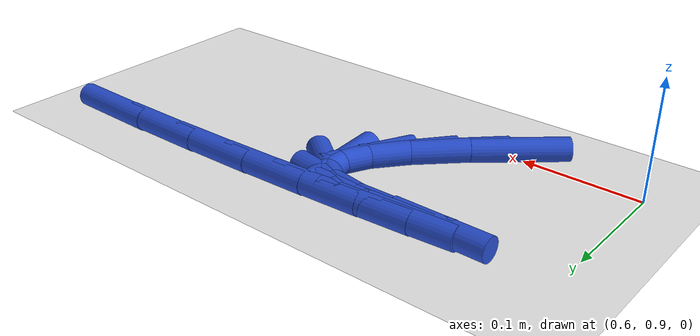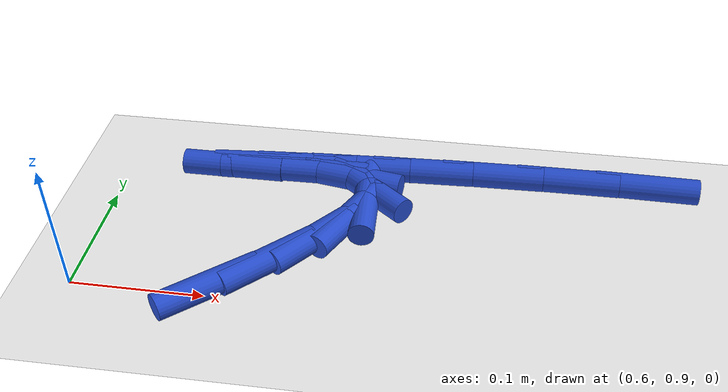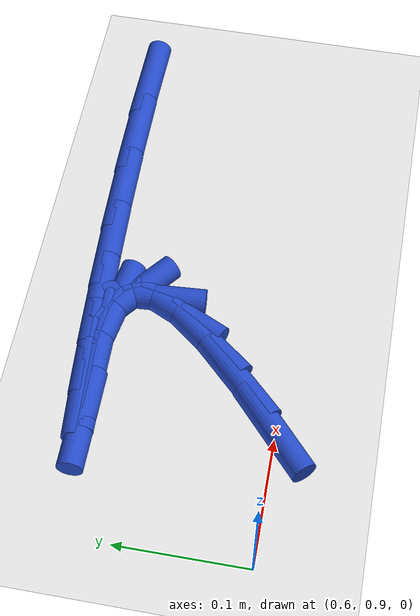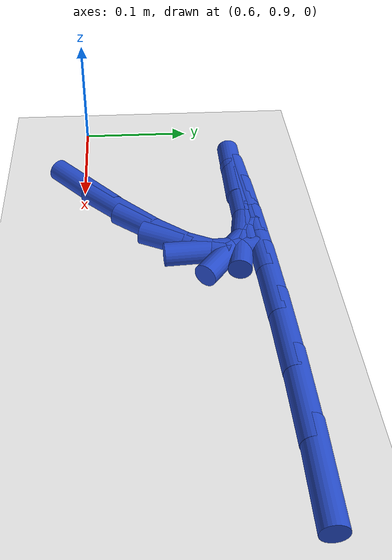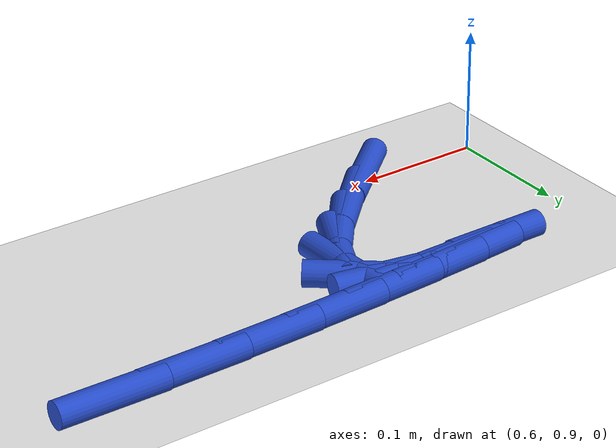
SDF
<sdf version="1.6">
 <world name="default">
  <model name="ground_plane">
   <static>1</static>
   <link name="link">
    <collision name="collision">
     <geometry><plane><normal>0 0 1</normal><size>100 100</size></plane></geometry>
     <surface><friction><ode><mu>100</mu><mu2>50</mu2></ode></friction></surface>
    </collision>
    <visual name="visual">
     <cast_shadows>0</cast_shadows>
     <geometry><plane><normal>0 0 1</normal><size>100 100</size></plane></geometry>
     <material>
      <script><uri>file://media/materials/scripts/gazebo.material</uri><name>Gazebo/WhiteGlow</name></script>
     </material>
    </visual>
   </link>
  </model>
  <model name="line">
   <link name="link_28">
    <pose>0.7032504309300246 0.9013140658442317 0.01 0 1.57 0.7214390616236003</pose>
    <collision name="collision">
     <geometry><cylinder><radius>0.01</radius><length>0.08</length></cylinder></geometry>
    </collision>
    <visual name="visual">
     <material>
      <script><name>Gazebo/Blue</name><uri>file://media/materials/scripts/gazebo.material</uri></script>
     </material>
     <geometry><cylinder><radius>0.01</radius><length>0.08</length></cylinder></geometry>
    </visual>
   </link>
   <link name="link_29">
    <pose>0.7391868278198812 0.9329243378014703 0.01 0 1.57 0.7852481949866682</pose>
    <collision name="collision">
     <geometry><cylinder><radius>0.01</radius><length>0.08</length></cylinder></geometry>
    </collision>
    <visual name="visual">
     <material>
      <script><name>Gazebo/Blue</name><uri>file://media/materials/scripts/gazebo.material</uri></script>
     </material>
     <geometry><cylinder><radius>0.01</radius><length>0.08</length></cylinder></geometry>
    </visual>
   </link>
   <link name="link_30">
    <pose>0.7680372599301752 0.9617661179023198 0.01 0 1.57 0.8961079967658859</pose>
    <collision name="collision">
     <geometry><cylinder><radius>0.01</radius><length>0.08</length></cylinder></geometry>
    </collision>
    <visual name="visual">
     <material>
      <script><name>Gazebo/Blue</name><uri>file://media/materials/scripts/gazebo.material</uri></script>
     </material>
     <geometry><cylinder><radius>0.01</radius><length>0.08</length></cylinder></geometry>
    </visual>
   </link>
   <link name="link_31">
    <pose>0.7883566267550107 0.9871680660451438 0.01 0 1.57 1.118567717611893</pose>
    <collision name="collision">
     <geometry><cylinder><radius>0.01</radius><length>0.08</length></cylinder></geometry>
    </collision>
    <visual name="visual">
     <material>
      <script><name>Gazebo/Blue</name><uri>file://media/materials/scripts/gazebo.material</uri></script>
     </material>
     <geometry><cylinder><radius>0.01</radius><length>0.08</length></cylinder></geometry>
    </visual>
   </link>
   <link name="link_32">
    <pose>0.7986998277884919 1.0084588421283063 0.01 0 1.57 -1.5055843432101452</pose>
    <collision name="collision">
     <geometry><cylinder><radius>0.01</radius><length>0.08</length></cylinder></geometry>
    </collision>
    <visual name="visual">
     <material>
      <script><name>Gazebo/Blue</name><uri>file://media/materials/scripts/gazebo.material</uri></script>
     </material>
     <geometry><cylinder><radius>0.01</radius><length>0.08</length></cylinder></geometry>
    </visual>
   </link>
   <link name="link_33">
    <pose>0.7976217625247232 1.0249671060501713 0.01 0 1.57 -0.6703029265155137</pose>
    <collision name="collision">
     <geometry><cylinder><radius>0.01</radius><length>0.08</length></cylinder></geometry>
    </collision>
    <visual name="visual">
     <material>
      <script><name>Gazebo/Blue</name><uri>file://media/materials/scripts/gazebo.material</uri></script>
     </material>
     <geometry><cylinder><radius>0.01</radius><length>0.08</length></cylinder></geometry>
    </visual>
   </link>
   <link name="link_34">
    <pose>0.7836773304578089 1.036021517709103 0.01 0 1.57 -0.1727272816999848</pose>
    <collision name="collision">
     <geometry><cylinder><radius>0.01</radius><length>0.08</length></cylinder></geometry>
    </collision>
    <visual name="visual">
     <material>
      <script><name>Gazebo/Blue</name><uri>file://media/materials/scripts/gazebo.material</uri></script>
     </material>
     <geometry><cylinder><radius>0.01</radius><length>0.08</length></cylinder></geometry>
    </visual>
   </link>
   <link name="link_35">
    <pose>0.7554225045401322 1.0409510181812782 0.01 0 1.57 0.013539274539179837</pose>
    <collision name="collision">
     <geometry><cylinder><radius>0.01</radius><length>0.08</length></cylinder></geometry>
    </collision>
    <visual name="visual">
     <material>
      <script><name>Gazebo/Blue</name><uri>file://media/materials/scripts/gazebo.material</uri></script>
     </material>
     <geometry><cylinder><radius>0.01</radius><length>0.08</length></cylinder></geometry>
    </visual>
   </link>
   <link name="link_36">
    <pose>0.7165283898204996 1.040424387904529 0.01 0 1.57 0.04062246191361496</pose>
    <collision name="collision">
     <geometry><cylinder><radius>0.01</radius><length>0.08</length></cylinder></geometry>
    </collision>
    <visual name="visual">
     <material>
      <script><name>Gazebo/Blue</name><uri>file://media/materials/scripts/gazebo.material</uri></script>
     </material>
     <geometry><cylinder><radius>0.01</radius><length>0.08</length></cylinder></geometry>
    </visual>
   </link>
   <link name="link_37">
    <pose>0.6861410985516151 1.0391893018743115 0.01 0 1.57 -0.0012549470230298768</pose>
    <collision name="collision">
     <geometry><cylinder><radius>0.01</radius><length>0.08</length></cylinder></geometry>
    </collision>
    <visual name="visual">
     <material>
      <script><name>Gazebo/Blue</name><uri>file://media/materials/scripts/gazebo.material</uri></script>
     </material>
     <geometry><cylinder><radius>0.01</radius><length>0.08</length></cylinder></geometry>
    </visual>
   </link>
   <link name="link_41">
    <pose>0.710027162458029 1.0444348749916466 0.01 0 1.57 0.07551353488330204</pose>
    <collision name="collision">
     <geometry><cylinder><radius>0.01</radius><length>0.08</length></cylinder></geometry>
    </collision>
    <visual name="visual">
     <material>
      <script><name>Gazebo/Blue</name><uri>file://media/materials/scripts/gazebo.material</uri></script>
     </material>
     <geometry><cylinder><radius>0.01</radius><length>0.08</length></cylinder></geometry>
    </visual>
   </link>
   <link name="link_42">
    <pose>0.7447725630418902 1.0470636215396982 0.01 0 1.57 0.061364786768981265</pose>
    <collision name="collision">
     <geometry><cylinder><radius>0.01</radius><length>0.08</length></cylinder></geometry>
    </collision>
    <visual name="visual">
     <material>
      <script><name>Gazebo/Blue</name><uri>file://media/materials/scripts/gazebo.material</uri></script>
     </material>
     <geometry><cylinder><radius>0.01</radius><length>0.08</length></cylinder></geometry>
    </visual>
   </link>
   <link name="link_43">
    <pose>0.7879473769830165 1.0497163653840356 0.01 0 1.57 0.048405381832603116</pose>
    <collision name="collision">
     <geometry><cylinder><radius>0.01</radius><length>0.08</length></cylinder></geometry>
    </collision>
    <visual name="visual">
     <material>
      <script><name>Gazebo/Blue</name><uri>file://media/materials/scripts/gazebo.material</uri></script>
     </material>
     <geometry><cylinder><radius>0.01</radius><length>0.08</length></cylinder></geometry>
    </visual>
   </link>
   <link name="link_44">
    <pose>0.8380115340385887 1.0521416345190573 0.01 0 1.57 0.035109226056950896</pose>
    <collision name="collision">
     <geometry><cylinder><radius>0.01</radius><length>0.08</length></cylinder></geometry>
    </collision>
    <visual name="visual">
     <material>
      <script><name>Gazebo/Blue</name><uri>file://media/materials/scripts/gazebo.material</uri></script>
     </material>
     <geometry><cylinder><radius>0.01</radius><length>0.08</length></cylinder></geometry>
    </visual>
   </link>
   <link name="link_45">
    <pose>0.8934249639657881 1.054087956939163 0.01 0 1.57 0.020528180627371145</pose>
    <collision name="collision">
     <geometry><cylinder><radius>0.01</radius><length>0.08</length></cylinder></geometry>
    </collision>
    <visual name="visual">
     <material>
      <script><name>Gazebo/Blue</name><uri>file://media/materials/scripts/gazebo.material</uri></script>
     </material>
     <geometry><cylinder><radius>0.01</radius><length>0.08</length></cylinder></geometry>
    </visual>
   </link>
   <link name="link_46">
    <pose>0.9526475965217949 1.0553038606387521 0.01 0 1.57 0.0038055802105734274</pose>
    <collision name="collision">
     <geometry><cylinder><radius>0.01</radius><length>0.08</length></cylinder></geometry>
    </collision>
    <visual name="visual">
     <material>
      <script><name>Gazebo/Blue</name><uri>file://media/materials/scripts/gazebo.material</uri></script>
     </material>
     <geometry><cylinder><radius>0.01</radius><length>0.08</length></cylinder></geometry>
    </visual>
   </link>
   <link name="link_47">
    <pose>1.0141393614637901 1.0555378736122227 0.01 0 1.57 -0.01605995749989276</pose>
    <collision name="collision">
     <geometry><cylinder><radius>0.01</radius><length>0.08</length></cylinder></geometry>
    </collision>
    <visual name="visual">
     <material>
      <script><name>Gazebo/Blue</name><uri>file://media/materials/scripts/gazebo.material</uri></script>
     </material>
     <geometry><cylinder><radius>0.01</radius><length>0.08</length></cylinder></geometry>
    </visual>
   </link>
  </model>
 </world>
</sdf>
